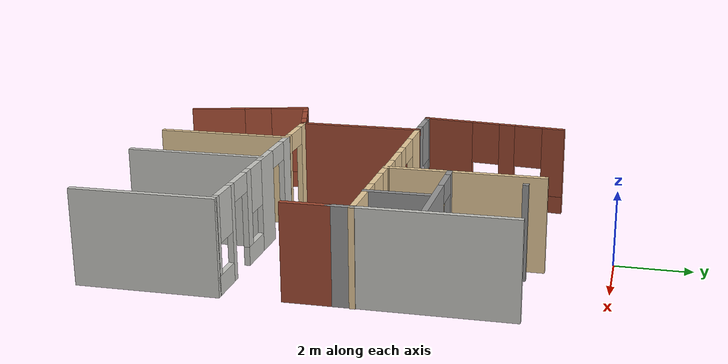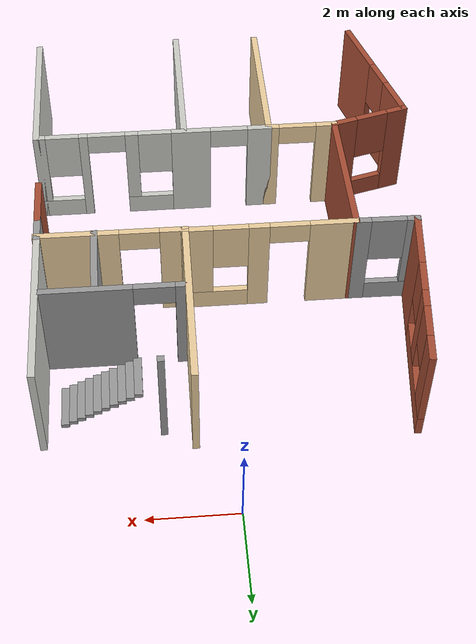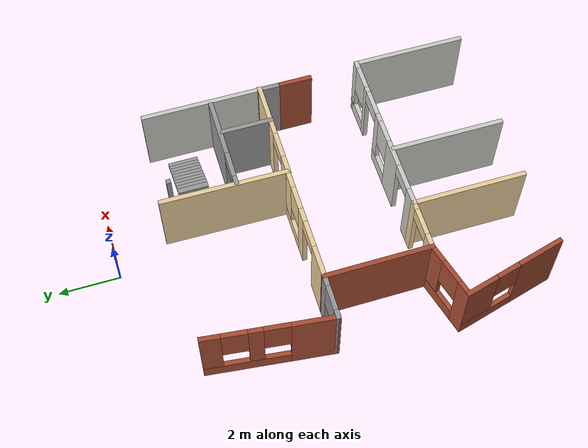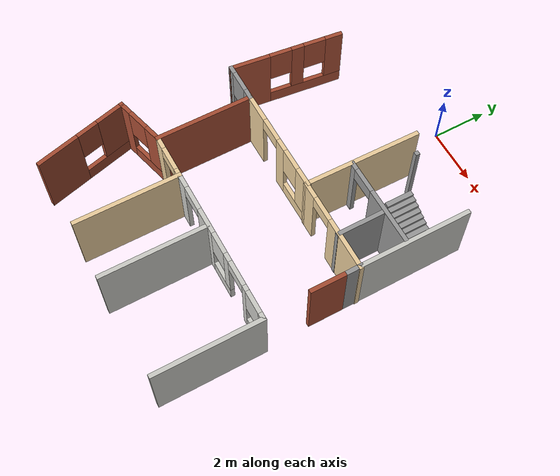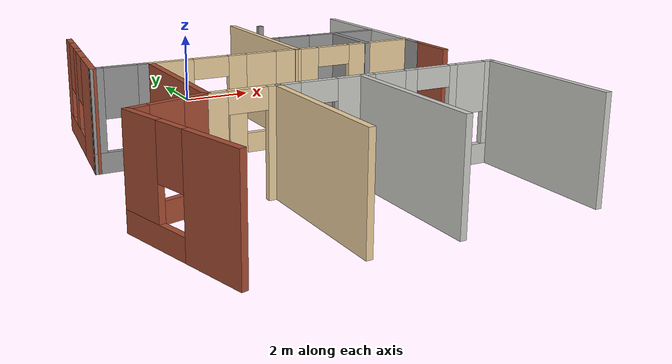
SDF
<sdf version="1.6">
 <model name="Building">
  <pose>4.29574 -7.32604 0 0 -0 0</pose>
  <link name="Stairs_2">
   <visual name="Stairs_2_Visual_0">
    <pose>-0.680228 4.38796 0.05 0 0 -1.5708</pose>
    <geometry><box><size>1 0.18 0.1</size></box></geometry>
    <material>
     <script><uri>file://media/materials/scripts/gazebo.material</uri><name>Gazebo/Grey</name></script>
     <ambient>1 1 1 1</ambient>
    </material>
    <meta><layer>0</layer></meta>
   </visual>
   <collision name="Stairs_2_Collision_0">
    <geometry><box><size>1 0.18 0.1</size></box></geometry>
    <pose>-0.680228 4.38796 0.05 0 0 -1.5708</pose>
   </collision>
   <visual name="Stairs_2_Visual_1">
    <pose>-0.860228 4.38796 0.15 0 0 -1.5708</pose>
    <geometry><box><size>1 0.18 0.1</size></box></geometry>
    <material>
     <script><uri>file://media/materials/scripts/gazebo.material</uri><name>Gazebo/Grey</name></script>
     <ambient>1 1 1 1</ambient>
    </material>
    <meta><layer>0</layer></meta>
   </visual>
   <collision name="Stairs_2_Collision_1">
    <geometry><box><size>1 0.18 0.1</size></box></geometry>
    <pose>-0.860228 4.38796 0.15 0 0 -1.5708</pose>
   </collision>
   <visual name="Stairs_2_Visual_2">
    <pose>-1.04023 4.38796 0.25 0 0 -1.5708</pose>
    <geometry><box><size>1 0.18 0.1</size></box></geometry>
    <material>
     <script><uri>file://media/materials/scripts/gazebo.material</uri><name>Gazebo/Grey</name></script>
     <ambient>1 1 1 1</ambient>
    </material>
    <meta><layer>0</layer></meta>
   </visual>
   <collision name="Stairs_2_Collision_2">
    <geometry><box><size>1 0.18 0.1</size></box></geometry>
    <pose>-1.04023 4.38796 0.25 0 0 -1.5708</pose>
   </collision>
   <visual name="Stairs_2_Visual_3">
    <pose>-1.22023 4.38796 0.35 0 0 -1.5708</pose>
    <geometry><box><size>1 0.18 0.1</size></box></geometry>
    <material>
     <script><uri>file://media/materials/scripts/gazebo.material</uri><name>Gazebo/Grey</name></script>
     <ambient>1 1 1 1</ambient>
    </material>
    <meta><layer>0</layer></meta>
   </visual>
   <collision name="Stairs_2_Collision_3">
    <geometry><box><size>1 0.18 0.1</size></box></geometry>
    <pose>-1.22023 4.38796 0.35 0 0 -1.5708</pose>
   </collision>
   <visual name="Stairs_2_Visual_4">
    <pose>-1.40023 4.38796 0.45 0 0 -1.5708</pose>
    <geometry><box><size>1 0.18 0.1</size></box></geometry>
    <material>
     <script><uri>file://media/materials/scripts/gazebo.material</uri><name>Gazebo/Grey</name></script>
     <ambient>1 1 1 1</ambient>
    </material>
    <meta><layer>0</layer></meta>
   </visual>
   <collision name="Stairs_2_Collision_4">
    <geometry><box><size>1 0.18 0.1</size></box></geometry>
    <pose>-1.40023 4.38796 0.45 0 0 -1.5708</pose>
   </collision>
   <visual name="Stairs_2_Visual_5">
    <pose>-1.58023 4.38796 0.55 0 0 -1.5708</pose>
    <geometry><box><size>1 0.18 0.1</size></box></geometry>
    <material>
     <script><uri>file://media/materials/scripts/gazebo.material</uri><name>Gazebo/Grey</name></script>
     <ambient>1 1 1 1</ambient>
    </material>
    <meta><layer>0</layer></meta>
   </visual>
   <collision name="Stairs_2_Collision_5">
    <geometry><box><size>1 0.18 0.1</size></box></geometry>
    <pose>-1.58023 4.38796 0.55 0 0 -1.5708</pose>
   </collision>
   <visual name="Stairs_2_Visual_6">
    <pose>-1.76023 4.38796 0.65 0 0 -1.5708</pose>
    <geometry><box><size>1 0.18 0.1</size></box></geometry>
    <material>
     <script><uri>file://media/materials/scripts/gazebo.material</uri><name>Gazebo/Grey</name></script>
     <ambient>1 1 1 1</ambient>
    </material>
    <meta><layer>0</layer></meta>
   </visual>
   <collision name="Stairs_2_Collision_6">
    <geometry><box><size>1 0.18 0.1</size></box></geometry>
    <pose>-1.76023 4.38796 0.65 0 0 -1.5708</pose>
   </collision>
   <visual name="Stairs_2_Visual_7">
    <pose>-1.94023 4.38796 0.75 0 0 -1.5708</pose>
    <geometry><box><size>1 0.18 0.1</size></box></geometry>
    <material>
     <script><uri>file://media/materials/scripts/gazebo.material</uri><name>Gazebo/Grey</name></script>
     <ambient>1 1 1 1</ambient>
    </material>
    <meta><layer>0</layer></meta>
   </visual>
   <collision name="Stairs_2_Collision_7">
    <geometry><box><size>1 0.18 0.1</size></box></geometry>
    <pose>-1.94023 4.38796 0.75 0 0 -1.5708</pose>
   </collision>
   <visual name="Stairs_2_Visual_8">
    <pose>-2.12023 4.38796 0.85 0 0 -1.5708</pose>
    <geometry><box><size>1 0.18 0.1</size></box></geometry>
    <material>
     <script><uri>file://media/materials/scripts/gazebo.material</uri><name>Gazebo/Grey</name></script>
     <ambient>1 1 1 1</ambient>
    </material>
    <meta><layer>0</layer></meta>
   </visual>
   <collision name="Stairs_2_Collision_8">
    <geometry><box><size>1 0.18 0.1</size></box></geometry>
    <pose>-2.12023 4.38796 0.85 0 0 -1.5708</pose>
   </collision>
   <visual name="Stairs_2_Visual_9">
    <pose>-2.30023 4.38796 0.95 0 0 -1.5708</pose>
    <geometry><box><size>1 0.18 0.1</size></box></geometry>
    <material>
     <script><uri>file://media/materials/scripts/gazebo.material</uri><name>Gazebo/Grey</name></script>
     <ambient>1 1 1 1</ambient>
    </material>
    <meta><layer>0</layer></meta>
   </visual>
   <collision name="Stairs_2_Collision_9">
    <geometry><box><size>1 0.18 0.1</size></box></geometry>
    <pose>-2.30023 4.38796 0.95 0 0 -1.5708</pose>
   </collision>
  </link>
  <link name="Wall_11">
   <pose>-6.52017 -1.84669 0 0 -0 0</pose>
   <visual name="Wall_11_Visual_0">
    <pose>-0.613993 0 1.25 0 -0 0</pose>
    <geometry><box><size>0.522013 0.15 2.5</size></box></geometry>
    <material>
     <script><uri>file://media/materials/scripts/gazebo.material</uri><name>Gazebo/Grey</name></script>
     <ambient>0.921569 0.807843 0.615686 1</ambient>
    </material>
    <meta><layer>0</layer></meta>
   </visual>
   <collision name="Wall_11_Collision_0">
    <geometry><box><size>0.522013 0.15 2.5</size></box></geometry>
    <pose>-0.613993 0 1.25 0 -0 0</pose>
   </collision>
   <visual name="Wall_11_Visual_1">
    <pose>0.711007 0 1.25 0 -0 0</pose>
    <geometry><box><size>0.327987 0.15 2.5</size></box></geometry>
    <material>
     <script><uri>file://media/materials/scripts/gazebo.material</uri><name>Gazebo/Grey</name></script>
     <ambient>0.921569 0.807843 0.615686 1</ambient>
    </material>
    <meta><layer>0</layer></meta>
   </visual>
   <collision name="Wall_11_Collision_1">
    <geometry><box><size>0.327987 0.15 2.5</size></box></geometry>
    <pose>0.711007 0 1.25 0 -0 0</pose>
   </collision>
   <visual name="Wall_11_Visual_2">
    <pose>0.097013 0 2.25 0 -0 0</pose>
    <geometry><box><size>0.9 0.15 0.5</size></box></geometry>
    <material>
     <script><uri>file://media/materials/scripts/gazebo.material</uri><name>Gazebo/Grey</name></script>
     <ambient>0.921569 0.807843 0.615686 1</ambient>
    </material>
    <meta><layer>0</layer></meta>
   </visual>
   <collision name="Wall_11_Collision_2">
    <geometry><box><size>0.9 0.15 0.5</size></box></geometry>
    <pose>0.097013 0 2.25 0 -0 0</pose>
   </collision>
  </link>
  <link name="Wall_12">
   <collision name="Wall_12_Collision">
    <geometry><box><size>3.75 0.15 2.5</size></box></geometry>
    <pose>0 0 1.25 0 -0 0</pose>
   </collision>
   <visual name="Wall_12_Visual">
    <pose>0 0 1.25 0 -0 0</pose>
    <geometry><box><size>3.75 0.15 2.5</size></box></geometry>
    <material>
     <script><uri>file://media/materials/scripts/gazebo.material</uri><name>Gazebo/Grey</name></script>
     <ambient>0.921569 0.807843 0.615686 1</ambient>
    </material>
    <meta><layer>0</layer></meta>
   </visual>
   <pose>-5.72017 -3.64669 0 0 0 -1.5708</pose>
  </link>
  <link name="Wall_14">
   <pose>-2.92017 -1.84669 0 0 -0 0</pose>
   <visual name="Wall_14_Visual_0">
    <pose>-2.58082 0 1.25 0 -0 0</pose>
    <geometry><box><size>0.588363 0.15 2.5</size></box></geometry>
    <material>
     <script><uri>file://media/materials/scripts/gazebo.material</uri><name>Gazebo/CeilingTiled</name></script>
     <ambient>0.921569 0.807843 0.615686 1</ambient>
    </material>
    <meta><layer>0</layer></meta>
   </visual>
   <collision name="Wall_14_Collision_0">
    <geometry><box><size>0.588363 0.15 2.5</size></box></geometry>
    <pose>-2.58082 0 1.25 0 -0 0</pose>
   </collision>
   <visual name="Wall_14_Visual_1">
    <pose>-0.912337 0 1.25 0 -0 0</pose>
    <geometry><box><size>0.9486 0.15 2.5</size></box></geometry>
    <material>
     <script><uri>file://media/materials/scripts/gazebo.material</uri><name>Gazebo/CeilingTiled</name></script>
     <ambient>0.921569 0.807843 0.615686 1</ambient>
    </material>
    <meta><layer>0</layer></meta>
   </visual>
   <collision name="Wall_14_Collision_1">
    <geometry><box><size>0.9486 0.15 2.5</size></box></geometry>
    <pose>-0.912337 0 1.25 0 -0 0</pose>
   </collision>
   <visual name="Wall_14_Visual_2">
    <pose>1.67976 0 1.25 0 -0 0</pose>
    <geometry><box><size>0.208 0.15 2.5</size></box></geometry>
    <material>
     <script><uri>file://media/materials/scripts/gazebo.material</uri><name>Gazebo/CeilingTiled</name></script>
     <ambient>0.921569 0.807843 0.615686 1</ambient>
    </material>
    <meta><layer>0</layer></meta>
   </visual>
   <collision name="Wall_14_Collision_2">
    <geometry><box><size>0.208 0.15 2.5</size></box></geometry>
    <pose>1.67976 0 1.25 0 -0 0</pose>
   </collision>
   <visual name="Wall_14_Visual_3">
    <pose>0.118863 0 0.25 0 -0 0</pose>
    <geometry><box><size>1.1138 0.15 0.5</size></box></geometry>
    <material>
     <script><uri>file://media/materials/scripts/gazebo.material</uri><name>Gazebo/CeilingTiled</name></script>
     <ambient>0.921569 0.807843 0.615686 1</ambient>
    </material>
    <meta><layer>0</layer></meta>
   </visual>
   <collision name="Wall_14_Collision_3">
    <geometry><box><size>1.1138 0.15 0.5</size></box></geometry>
    <pose>0.118863 0 0.25 0 -0 0</pose>
   </collision>
   <visual name="Wall_14_Visual_4">
    <pose>2.32938 0 0.25 0 -0 0</pose>
    <geometry><box><size>1.09124 0.15 0.5</size></box></geometry>
    <material>
     <script><uri>file://media/materials/scripts/gazebo.material</uri><name>Gazebo/CeilingTiled</name></script>
     <ambient>0.921569 0.807843 0.615686 1</ambient>
    </material>
    <meta><layer>0</layer></meta>
   </visual>
   <collision name="Wall_14_Collision_4">
    <geometry><box><size>1.09124 0.15 0.5</size></box></geometry>
    <pose>2.32938 0 0.25 0 -0 0</pose>
   </collision>
   <visual name="Wall_14_Visual_5">
    <pose>0.518863 0 1.5 0 -0 0</pose>
    <geometry><box><size>0.3138 0.15 2</size></box></geometry>
    <material>
     <script><uri>file://media/materials/scripts/gazebo.material</uri><name>Gazebo/CeilingTiled</name></script>
     <ambient>0.921569 0.807843 0.615686 1</ambient>
    </material>
    <meta><layer>0</layer></meta>
   </visual>
   <collision name="Wall_14_Collision_5">
    <geometry><box><size>0.3138 0.15 2</size></box></geometry>
    <pose>0.518863 0 1.5 0 -0 0</pose>
   </collision>
   <visual name="Wall_14_Visual_6">
    <pose>0.518863 0 1.5 0 -0 0</pose>
    <geometry><box><size>0.3138 0.15 2</size></box></geometry>
    <material>
     <script><uri>file://media/materials/scripts/gazebo.material</uri><name>Gazebo/CeilingTiled</name></script>
     <ambient>0.921569 0.807843 0.615686 1</ambient>
    </material>
    <meta><layer>0</layer></meta>
   </visual>
   <collision name="Wall_14_Collision_6">
    <geometry><box><size>0.3138 0.15 2</size></box></geometry>
    <pose>0.518863 0 1.5 0 -0 0</pose>
   </collision>
   <visual name="Wall_14_Visual_7">
    <pose>2.72938 0 1.5 0 -0 0</pose>
    <geometry><box><size>0.291237 0.15 2</size></box></geometry>
    <material>
     <script><uri>file://media/materials/scripts/gazebo.material</uri><name>Gazebo/CeilingTiled</name></script>
     <ambient>0.921569 0.807843 0.615686 1</ambient>
    </material>
    <meta><layer>0</layer></meta>
   </visual>
   <collision name="Wall_14_Collision_7">
    <geometry><box><size>0.291237 0.15 2</size></box></geometry>
    <pose>2.72938 0 1.5 0 -0 0</pose>
   </collision>
   <visual name="Wall_14_Visual_8">
    <pose>-0.038037 0 1.9 0 -0 0</pose>
    <geometry><box><size>0.8 0.15 1.2</size></box></geometry>
    <material>
     <script><uri>file://media/materials/scripts/gazebo.material</uri><name>Gazebo/CeilingTiled</name></script>
     <ambient>0.921569 0.807843 0.615686 1</ambient>
    </material>
    <meta><layer>0</layer></meta>
   </visual>
   <collision name="Wall_14_Collision_8">
    <geometry><box><size>0.8 0.15 1.2</size></box></geometry>
    <pose>-0.038037 0 1.9 0 -0 0</pose>
   </collision>
   <visual name="Wall_14_Visual_9">
    <pose>2.18376 0 1.9 0 -0 0</pose>
    <geometry><box><size>0.8 0.15 1.2</size></box></geometry>
    <material>
     <script><uri>file://media/materials/scripts/gazebo.material</uri><name>Gazebo/CeilingTiled</name></script>
     <ambient>0.921569 0.807843 0.615686 1</ambient>
    </material>
    <meta><layer>0</layer></meta>
   </visual>
   <collision name="Wall_14_Collision_9">
    <geometry><box><size>0.8 0.15 1.2</size></box></geometry>
    <pose>2.18376 0 1.9 0 -0 0</pose>
   </collision>
   <visual name="Wall_14_Visual_10">
    <pose>-1.83664 0 2.25 0 -0 0</pose>
    <geometry><box><size>0.9 0.15 0.5</size></box></geometry>
    <material>
     <script><uri>file://media/materials/scripts/gazebo.material</uri><name>Gazebo/CeilingTiled</name></script>
     <ambient>0.921569 0.807843 0.615686 1</ambient>
    </material>
    <meta><layer>0</layer></meta>
   </visual>
   <collision name="Wall_14_Collision_10">
    <geometry><box><size>0.9 0.15 0.5</size></box></geometry>
    <pose>-1.83664 0 2.25 0 -0 0</pose>
   </collision>
   <visual name="Wall_14_Visual_11">
    <pose>1.12576 0 2.25 0 -0 0</pose>
    <geometry><box><size>0.9 0.15 0.5</size></box></geometry>
    <material>
     <script><uri>file://media/materials/scripts/gazebo.material</uri><name>Gazebo/CeilingTiled</name></script>
     <ambient>0.921569 0.807843 0.615686 1</ambient>
    </material>
    <meta><layer>0</layer></meta>
   </visual>
   <collision name="Wall_14_Collision_11">
    <geometry><box><size>0.9 0.15 0.5</size></box></geometry>
    <pose>1.12576 0 2.25 0 -0 0</pose>
   </collision>
   <visual name="Wall_14_Visual_12">
    <pose>1.12576 0 2.25 0 -0 0</pose>
    <geometry><box><size>0.9 0.15 0.5</size></box></geometry>
    <material>
     <script><uri>file://media/materials/scripts/gazebo.material</uri><name>Gazebo/CeilingTiled</name></script>
     <ambient>0.921569 0.807843 0.615686 1</ambient>
    </material>
    <meta><layer>0</layer></meta>
   </visual>
   <collision name="Wall_14_Collision_12">
    <geometry><box><size>0.9 0.15 0.5</size></box></geometry>
    <pose>1.12576 0 2.25 0 -0 0</pose>
   </collision>
  </link>
  <link name="Wall_15">
   <collision name="Wall_15_Collision">
    <geometry><box><size>3.75 0.15 2.5</size></box></geometry>
    <pose>0 0 1.25 0 -0 0</pose>
   </collision>
   <visual name="Wall_15_Visual">
    <pose>0 0 1.25 0 -0 0</pose>
    <geometry><box><size>3.75 0.15 2.5</size></box></geometry>
    <material>
     <script><uri>file://media/materials/scripts/gazebo.material</uri><name>Gazebo/CeilingTiled</name></script>
     <ambient>0.921569 0.807843 0.615686 1</ambient>
    </material>
    <meta><layer>0</layer></meta>
   </visual>
   <pose>-0.120167 -3.64669 0 0 0 -1.5708</pose>
  </link>
  <link name="Wall_19">
   <collision name="Wall_19_Collision">
    <geometry><box><size>3.75 0.15 2.5</size></box></geometry>
    <pose>0 0 1.25 0 -0 0</pose>
   </collision>
   <visual name="Wall_19_Visual">
    <pose>0 0 1.25 0 -0 0</pose>
    <geometry><box><size>3.75 0.15 2.5</size></box></geometry>
    <material>
     <script><uri>file://media/materials/scripts/gazebo.material</uri><name>Gazebo/CeilingTiled</name></script>
     <ambient>0.921569 0.807843 0.615686 1</ambient>
    </material>
    <meta><layer>0</layer></meta>
   </visual>
   <pose>-3.66538 -3.70743 0 0 0 -1.5708</pose>
  </link>
  <link name="Wall_23">
   <pose>-5.40433 1.5402 0 0 -0 0</pose>
   <visual name="Wall_23_Visual_0">
    <pose>-1.44346 0 1.25 0 -0 0</pose>
    <geometry><box><size>1.11308 0.15 2.5</size></box></geometry>
    <material>
     <script><uri>file://media/materials/scripts/gazebo.material</uri><name>Gazebo/Grey</name></script>
     <ambient>0.921569 0.807843 0.615686 1</ambient>
    </material>
    <meta><layer>0</layer></meta>
   </visual>
   <collision name="Wall_23_Collision_0">
    <geometry><box><size>1.11308 0.15 2.5</size></box></geometry>
    <pose>-1.44346 0 1.25 0 -0 0</pose>
   </collision>
   <visual name="Wall_23_Visual_1">
    <pose>0.249326 0 1.25 0 -0 0</pose>
    <geometry><box><size>0.4725 0.15 2.5</size></box></geometry>
    <material>
     <script><uri>file://media/materials/scripts/gazebo.material</uri><name>Gazebo/Grey</name></script>
     <ambient>0.921569 0.807843 0.615686 1</ambient>
    </material>
    <meta><layer>0</layer></meta>
   </visual>
   <collision name="Wall_23_Collision_1">
    <geometry><box><size>0.4725 0.15 2.5</size></box></geometry>
    <pose>0.249326 0 1.25 0 -0 0</pose>
   </collision>
   <visual name="Wall_23_Visual_2">
    <pose>1.24279 0 0.25 0 -0 0</pose>
    <geometry><box><size>1.51442 0.15 0.5</size></box></geometry>
    <material>
     <script><uri>file://media/materials/scripts/gazebo.material</uri><name>Gazebo/Grey</name></script>
     <ambient>0.921569 0.807843 0.615686 1</ambient>
    </material>
    <meta><layer>0</layer></meta>
   </visual>
   <collision name="Wall_23_Collision_2">
    <geometry><box><size>1.51442 0.15 0.5</size></box></geometry>
    <pose>1.24279 0 0.25 0 -0 0</pose>
   </collision>
   <visual name="Wall_23_Visual_3">
    <pose>1.64279 0 1.5 0 -0 0</pose>
    <geometry><box><size>0.714424 0.15 2</size></box></geometry>
    <material>
     <script><uri>file://media/materials/scripts/gazebo.material</uri><name>Gazebo/Grey</name></script>
     <ambient>0.921569 0.807843 0.615686 1</ambient>
    </material>
    <meta><layer>0</layer></meta>
   </visual>
   <collision name="Wall_23_Collision_3">
    <geometry><box><size>0.714424 0.15 2</size></box></geometry>
    <pose>1.64279 0 1.5 0 -0 0</pose>
   </collision>
   <visual name="Wall_23_Visual_4">
    <pose>0.885576 0 1.9 0 -0 0</pose>
    <geometry><box><size>0.8 0.15 1.2</size></box></geometry>
    <material>
     <script><uri>file://media/materials/scripts/gazebo.material</uri><name>Gazebo/Grey</name></script>
     <ambient>0.921569 0.807843 0.615686 1</ambient>
    </material>
    <meta><layer>0</layer></meta>
   </visual>
   <collision name="Wall_23_Collision_4">
    <geometry><box><size>0.8 0.15 1.2</size></box></geometry>
    <pose>0.885576 0 1.9 0 -0 0</pose>
   </collision>
   <visual name="Wall_23_Visual_5">
    <pose>-0.436924 0 2.25 0 -0 0</pose>
    <geometry><box><size>0.9 0.15 0.5</size></box></geometry>
    <material>
     <script><uri>file://media/materials/scripts/gazebo.material</uri><name>Gazebo/Grey</name></script>
     <ambient>0.921569 0.807843 0.615686 1</ambient>
    </material>
    <meta><layer>0</layer></meta>
   </visual>
   <collision name="Wall_23_Collision_5">
    <geometry><box><size>0.9 0.15 0.5</size></box></geometry>
    <pose>-0.436924 0 2.25 0 -0 0</pose>
   </collision>
  </link>
  <link name="Wall_27">
   <collision name="Wall_27_Collision">
    <geometry><box><size>0.15 0.15 2.5</size></box></geometry>
    <pose>0 0 1.25 0 -0 0</pose>
   </collision>
   <visual name="Wall_27_Visual">
    <pose>0 0 1.25 0 -0 0</pose>
    <geometry><box><size>0.15 0.15 2.5</size></box></geometry>
    <material>
     <script><uri>file://media/materials/scripts/gazebo.material</uri><name>Gazebo/Grey</name></script>
     <ambient>1 1 1 1</ambient>
    </material>
    <meta><layer>0</layer></meta>
   </visual>
   <pose>-2.80058 5.17081 0 0 -0 0</pose>
  </link>
  <link name="Wall_33">
   <collision name="Wall_33_Collision">
    <geometry><box><size>4.20944 0.15 2.5</size></box></geometry>
    <pose>0 0 1.25 0 -0 0</pose>
   </collision>
   <visual name="Wall_33_Visual">
    <pose>0 0 1.25 0 -0 0</pose>
    <geometry><box><size>4.20944 0.15 2.5</size></box></geometry>
    <material>
     <script><uri>file://media/materials/scripts/gazebo.material</uri><name>Gazebo/Grey</name></script>
     <ambient>0.921569 0.807843 0.615686 1</ambient>
    </material>
    <meta><layer>0</layer></meta>
   </visual>
   <pose>-3.48131 3.54332 0 0 -0 1.55874</pose>
  </link>
  <link name="Wall_35">
   <pose>-1.85267 1.50582 0 0 0 -0.0048</pose>
   <visual name="Wall_35_Visual_0">
    <pose>-1.40365 0 1.25 0 -0 0</pose>
    <geometry><box><size>0.648961 0.15 2.5</size></box></geometry>
    <material>
     <script><uri>file://media/materials/scripts/gazebo.material</uri><name>Gazebo/Grey</name></script>
     <ambient>0.921569 0.807843 0.615686 1</ambient>
    </material>
    <meta><layer>0</layer></meta>
   </visual>
   <collision name="Wall_35_Collision_0">
    <geometry><box><size>0.648961 0.15 2.5</size></box></geometry>
    <pose>-1.40365 0 1.25 0 -0 0</pose>
   </collision>
   <visual name="Wall_35_Visual_1">
    <pose>0.77448 0 1.25 0 -0 0</pose>
    <geometry><box><size>1.90729 0.15 2.5</size></box></geometry>
    <material>
     <script><uri>file://media/materials/scripts/gazebo.material</uri><name>Gazebo/Grey</name></script>
     <ambient>0.921569 0.807843 0.615686 1</ambient>
    </material>
    <meta><layer>0</layer></meta>
   </visual>
   <collision name="Wall_35_Collision_1">
    <geometry><box><size>1.90729 0.15 2.5</size></box></geometry>
    <pose>0.77448 0 1.25 0 -0 0</pose>
   </collision>
   <visual name="Wall_35_Visual_2">
    <pose>-0.629166 0 2.25 0 -0 0</pose>
    <geometry><box><size>0.9 0.15 0.5</size></box></geometry>
    <material>
     <script><uri>file://media/materials/scripts/gazebo.material</uri><name>Gazebo/Grey</name></script>
     <ambient>0.921569 0.807843 0.615686 1</ambient>
    </material>
    <meta><layer>0</layer></meta>
   </visual>
   <collision name="Wall_35_Collision_2">
    <geometry><box><size>0.9 0.15 0.5</size></box></geometry>
    <pose>-0.629166 0 2.25 0 -0 0</pose>
   </collision>
  </link>
  <link name="Wall_39">
   <collision name="Wall_39_Collision">
    <geometry><box><size>4 0.15 2.5</size></box></geometry>
    <pose>0 0 1.25 0 -0 0</pose>
   </collision>
   <visual name="Wall_39_Visual">
    <pose>0 0 1.25 0 -0 0</pose>
    <geometry><box><size>4 0.15 2.5</size></box></geometry>
    <material>
     <script><uri>file://media/materials/scripts/gazebo.material</uri><name>Gazebo/CeilingTiled</name></script>
     <ambient>1 1 1 1</ambient>
    </material>
    <meta><layer>0</layer></meta>
   </visual>
   <pose>-0.226014 3.44933 0 0 -0 1.5708</pose>
  </link>
  <link name="Wall_4">
   <pose>-8.67361 -3.94343 0 0 -0 1.8326</pose>
   <visual name="Wall_4_Visual_0">
    <pose>-0.961066 0 1.25 0 -0 0</pose>
    <geometry><box><size>1.57787 0.15 2.5</size></box></geometry>
    <material>
     <script><uri>file://media/materials/scripts/gazebo.material</uri><name>Gazebo/Bricks</name></script>
     <ambient>1 1 1 1</ambient>
    </material>
    <meta><layer>0</layer></meta>
   </visual>
   <collision name="Wall_4_Collision_0">
    <geometry><box><size>1.57787 0.15 2.5</size></box></geometry>
    <pose>-0.961066 0 1.25 0 -0 0</pose>
   </collision>
   <visual name="Wall_4_Visual_1">
    <pose>0.788934 0 0.25 0 -0 0</pose>
    <geometry><box><size>1.92213 0.15 0.5</size></box></geometry>
    <material>
     <script><uri>file://media/materials/scripts/gazebo.material</uri><name>Gazebo/Bricks</name></script>
     <ambient>1 1 1 1</ambient>
    </material>
    <meta><layer>0</layer></meta>
   </visual>
   <collision name="Wall_4_Collision_1">
    <geometry><box><size>1.92213 0.15 0.5</size></box></geometry>
    <pose>0.788934 0 0.25 0 -0 0</pose>
   </collision>
   <visual name="Wall_4_Visual_2">
    <pose>1.18893 0 1.5 0 -0 0</pose>
    <geometry><box><size>1.12213 0.15 2</size></box></geometry>
    <material>
     <script><uri>file://media/materials/scripts/gazebo.material</uri><name>Gazebo/Bricks</name></script>
     <ambient>1 1 1 1</ambient>
    </material>
    <meta><layer>0</layer></meta>
   </visual>
   <collision name="Wall_4_Collision_2">
    <geometry><box><size>1.12213 0.15 2</size></box></geometry>
    <pose>1.18893 0 1.5 0 -0 0</pose>
   </collision>
   <visual name="Wall_4_Visual_3">
    <pose>0.227868 0 1.9 0 -0 0</pose>
    <geometry><box><size>0.8 0.15 1.2</size></box></geometry>
    <material>
     <script><uri>file://media/materials/scripts/gazebo.material</uri><name>Gazebo/Bricks</name></script>
     <ambient>1 1 1 1</ambient>
    </material>
    <meta><layer>0</layer></meta>
   </visual>
   <collision name="Wall_4_Collision_3">
    <geometry><box><size>0.8 0.15 1.2</size></box></geometry>
    <pose>0.227868 0 1.9 0 -0 0</pose>
   </collision>
  </link>
  <link name="Wall_43">
   <pose>-1.90246 3.17229 0 0 -0 0</pose>
   <visual name="Wall_43_Visual_0">
    <pose>-1.45957 0 1.25 0 -0 0</pose>
    <geometry><box><size>0.330852 0.15 2.5</size></box></geometry>
    <material>
     <script><uri>file://media/materials/scripts/gazebo.material</uri><name>Gazebo/Grey</name></script>
     <ambient>1 1 1 1</ambient>
    </material>
    <meta><layer>0</layer></meta>
   </visual>
   <collision name="Wall_43_Collision_0">
    <geometry><box><size>0.330852 0.15 2.5</size></box></geometry>
    <pose>-1.45957 0 1.25 0 -0 0</pose>
   </collision>
   <visual name="Wall_43_Visual_1">
    <pose>0.615426 0 1.25 0 -0 0</pose>
    <geometry><box><size>2.01915 0.15 2.5</size></box></geometry>
    <material>
     <script><uri>file://media/materials/scripts/gazebo.material</uri><name>Gazebo/Grey</name></script>
     <ambient>1 1 1 1</ambient>
    </material>
    <meta><layer>0</layer></meta>
   </visual>
   <collision name="Wall_43_Collision_1">
    <geometry><box><size>2.01915 0.15 2.5</size></box></geometry>
    <pose>0.615426 0 1.25 0 -0 0</pose>
   </collision>
   <visual name="Wall_43_Visual_2">
    <pose>-0.844148 0 2.25 0 -0 0</pose>
    <geometry><box><size>0.9 0.15 0.5</size></box></geometry>
    <material>
     <script><uri>file://media/materials/scripts/gazebo.material</uri><name>Gazebo/Grey</name></script>
     <ambient>1 1 1 1</ambient>
    </material>
    <meta><layer>0</layer></meta>
   </visual>
   <collision name="Wall_43_Collision_2">
    <geometry><box><size>0.9 0.15 0.5</size></box></geometry>
    <pose>-0.844148 0 2.25 0 -0 0</pose>
   </collision>
  </link>
  <link name="Wall_45">
   <collision name="Wall_45_Collision">
    <geometry><box><size>1.75 0.15 2.5</size></box></geometry>
    <pose>0 0 1.25 0 -0 0</pose>
   </collision>
   <visual name="Wall_45_Visual">
    <pose>0 0 1.25 0 -0 0</pose>
    <geometry><box><size>1.75 0.15 2.5</size></box></geometry>
    <material>
     <script><uri>file://media/materials/scripts/gazebo.material</uri><name>Gazebo/Grey</name></script>
     <ambient>1 1 1 1</ambient>
    </material>
    <meta><layer>0</layer></meta>
   </visual>
   <pose>-1.48458 2.28897 0 0 0 -1.5708</pose>
  </link>
  <link name="Wall_47">
   <collision name="Wall_47_Collision">
    <geometry><box><size>0.75 0.15 2.5</size></box></geometry>
    <pose>0 0 1.25 0 -0 0</pose>
   </collision>
   <visual name="Wall_47_Visual">
    <pose>0 0 1.25 0 -0 0</pose>
    <geometry><box><size>0.75 0.15 2.5</size></box></geometry>
    <material>
     <script><uri>file://media/materials/scripts/gazebo.material</uri><name>Gazebo/Grey</name></script>
     <ambient>1 1 1 1</ambient>
    </material>
    <meta><layer>0</layer></meta>
   </visual>
   <pose>-0.226014 1.22433 0 0 0 -1.5708</pose>
  </link>
  <link name="Wall_5">
   <pose>-8.21365 -2.08609 0 0 -0 0.261799</pose>
   <visual name="Wall_5_Visual_0">
    <pose>-0.733309 0 1.25 0 -0 0</pose>
    <geometry><box><size>0.533382 0.15 2.5</size></box></geometry>
    <material>
     <script><uri>file://media/materials/scripts/gazebo.material</uri><name>Gazebo/Bricks</name></script>
     <ambient>1 1 1 1</ambient>
    </material>
    <meta><layer>0</layer></meta>
   </visual>
   <collision name="Wall_5_Collision_0">
    <geometry><box><size>0.533382 0.15 2.5</size></box></geometry>
    <pose>-0.733309 0 1.25 0 -0 0</pose>
   </collision>
   <visual name="Wall_5_Visual_1">
    <pose>0.266691 0 0.25 0 -0 0</pose>
    <geometry><box><size>1.46662 0.15 0.5</size></box></geometry>
    <material>
     <script><uri>file://media/materials/scripts/gazebo.material</uri><name>Gazebo/Bricks</name></script>
     <ambient>1 1 1 1</ambient>
    </material>
    <meta><layer>0</layer></meta>
   </visual>
   <collision name="Wall_5_Collision_1">
    <geometry><box><size>1.46662 0.15 0.5</size></box></geometry>
    <pose>0.266691 0 0.25 0 -0 0</pose>
   </collision>
   <visual name="Wall_5_Visual_2">
    <pose>0.666691 0 1.5 0 -0 0</pose>
    <geometry><box><size>0.666618 0.15 2</size></box></geometry>
    <material>
     <script><uri>file://media/materials/scripts/gazebo.material</uri><name>Gazebo/Bricks</name></script>
     <ambient>1 1 1 1</ambient>
    </material>
    <meta><layer>0</layer></meta>
   </visual>
   <collision name="Wall_5_Collision_2">
    <geometry><box><size>0.666618 0.15 2</size></box></geometry>
    <pose>0.666691 0 1.5 0 -0 0</pose>
   </collision>
   <visual name="Wall_5_Visual_3">
    <pose>-0.066618 0 1.9 0 -0 0</pose>
    <geometry><box><size>0.8 0.15 1.2</size></box></geometry>
    <material>
     <script><uri>file://media/materials/scripts/gazebo.material</uri><name>Gazebo/Bricks</name></script>
     <ambient>1 1 1 1</ambient>
    </material>
    <meta><layer>0</layer></meta>
   </visual>
   <collision name="Wall_5_Collision_3">
    <geometry><box><size>0.8 0.15 1.2</size></box></geometry>
    <pose>-0.066618 0 1.9 0 -0 0</pose>
   </collision>
  </link>
  <link name="Wall_6">
   <collision name="Wall_6_Collision">
    <geometry><box><size>3.5369 0.15 2.5</size></box></geometry>
    <pose>0 0 1.25 0 -0 0</pose>
   </collision>
   <visual name="Wall_6_Visual">
    <pose>0 0 1.25 0 -0 0</pose>
    <geometry><box><size>3.5369 0.15 2.5</size></box></geometry>
    <material>
     <script><uri>file://media/materials/scripts/gazebo.material</uri><name>Gazebo/Bricks</name></script>
     <ambient>1 1 1 1</ambient>
    </material>
    <meta><layer>0</layer></meta>
   </visual>
   <pose>-7.32475 -0.153243 0 0 -0 1.5735</pose>
  </link>
  <link name="Wall_65">
   <collision name="Wall_65_Collision">
    <geometry><box><size>1.25 0.15 2.5</size></box></geometry>
    <pose>0 0 1.25 0 -0 0</pose>
   </collision>
   <visual name="Wall_65_Visual">
    <pose>0 0 1.25 0 -0 0</pose>
    <geometry><box><size>1.25 0.15 2.5</size></box></geometry>
    <material>
     <script><uri>file://media/materials/scripts/gazebo.material</uri><name>Gazebo/Bricks</name></script>
     <ambient>1 1 1 1</ambient>
    </material>
    <meta><layer>0</layer></meta>
   </visual>
   <pose>-0.226014 0.374331 0 0 0 -1.5708</pose>
  </link>
  <link name="Wall_7">
   <pose>-8.01757 1.54676 0 0 -0 3.13207</pose>
   <visual name="Wall_7_Visual_0">
    <pose>-0.554694 0 1.25 0 -0 0</pose>
    <geometry><box><size>0.417153 0.15 2.5</size></box></geometry>
    <material>
     <script><uri>file://media/materials/scripts/gazebo.material</uri><name>Gazebo/Grey</name></script>
     <ambient>1 1 1 1</ambient>
    </material>
    <meta><layer>0</layer></meta>
   </visual>
   <collision name="Wall_7_Collision_0">
    <geometry><box><size>0.417153 0.15 2.5</size></box></geometry>
    <pose>-0.554694 0 1.25 0 -0 0</pose>
   </collision>
   <visual name="Wall_7_Visual_1">
    <pose>0.208577 0 0.25 0 -0 0</pose>
    <geometry><box><size>1.10939 0.15 0.5</size></box></geometry>
    <material>
     <script><uri>file://media/materials/scripts/gazebo.material</uri><name>Gazebo/Grey</name></script>
     <ambient>1 1 1 1</ambient>
    </material>
    <meta><layer>0</layer></meta>
   </visual>
   <collision name="Wall_7_Collision_1">
    <geometry><box><size>1.10939 0.15 0.5</size></box></geometry>
    <pose>0.208577 0 0.25 0 -0 0</pose>
   </collision>
   <visual name="Wall_7_Visual_2">
    <pose>0.608577 0 1.5 0 -0 0</pose>
    <geometry><box><size>0.309387 0.15 2</size></box></geometry>
    <material>
     <script><uri>file://media/materials/scripts/gazebo.material</uri><name>Gazebo/Grey</name></script>
     <ambient>1 1 1 1</ambient>
    </material>
    <meta><layer>0</layer></meta>
   </visual>
   <collision name="Wall_7_Collision_2">
    <geometry><box><size>0.309387 0.15 2</size></box></geometry>
    <pose>0.608577 0 1.5 0 -0 0</pose>
   </collision>
   <visual name="Wall_7_Visual_3">
    <pose>0.053883 0 1.9 0 -0 0</pose>
    <geometry><box><size>0.8 0.15 1.2</size></box></geometry>
    <material>
     <script><uri>file://media/materials/scripts/gazebo.material</uri><name>Gazebo/Grey</name></script>
     <ambient>1 1 1 1</ambient>
    </material>
    <meta><layer>0</layer></meta>
   </visual>
   <collision name="Wall_7_Collision_3">
    <geometry><box><size>0.8 0.15 1.2</size></box></geometry>
    <pose>0.053883 0 1.9 0 -0 0</pose>
   </collision>
  </link>
  <link name="Wall_8">
   <pose>-8.47295 3.54598 0 0 -0 1.45446</pose>
   <visual name="Wall_8_Visual_0">
    <pose>-1.34799 0 1.25 0 -0 0</pose>
    <geometry><box><size>1.46647 0.15 2.5</size></box></geometry>
    <material>
     <script><uri>file://media/materials/scripts/gazebo.material</uri><name>Gazebo/Bricks</name></script>
     <ambient>1 1 1 1</ambient>
    </material>
    <meta><layer>0</layer></meta>
   </visual>
   <collision name="Wall_8_Collision_0">
    <geometry><box><size>1.46647 0.15 2.5</size></box></geometry>
    <pose>-1.34799 0 1.25 0 -0 0</pose>
   </collision>
   <visual name="Wall_8_Visual_1">
    <pose>0.733235 0 0.25 0 -0 0</pose>
    <geometry><box><size>2.69598 0.15 0.5</size></box></geometry>
    <material>
     <script><uri>file://media/materials/scripts/gazebo.material</uri><name>Gazebo/Bricks</name></script>
     <ambient>1 1 1 1</ambient>
    </material>
    <meta><layer>0</layer></meta>
   </visual>
   <collision name="Wall_8_Collision_1">
    <geometry><box><size>2.69598 0.15 0.5</size></box></geometry>
    <pose>0.733235 0 0.25 0 -0 0</pose>
   </collision>
   <visual name="Wall_8_Visual_2">
    <pose>0.413888 0 1.5 0 -0 0</pose>
    <geometry><box><size>0.457289 0.15 2</size></box></geometry>
    <material>
     <script><uri>file://media/materials/scripts/gazebo.material</uri><name>Gazebo/Bricks</name></script>
     <ambient>1 1 1 1</ambient>
    </material>
    <meta><layer>0</layer></meta>
   </visual>
   <collision name="Wall_8_Collision_2">
    <geometry><box><size>0.457289 0.15 2</size></box></geometry>
    <pose>0.413888 0 1.5 0 -0 0</pose>
   </collision>
   <visual name="Wall_8_Visual_3">
    <pose>1.76188 0 1.5 0 -0 0</pose>
    <geometry><box><size>0.638694 0.15 2</size></box></geometry>
    <material>
     <script><uri>file://media/materials/scripts/gazebo.material</uri><name>Gazebo/Bricks</name></script>
     <ambient>1 1 1 1</ambient>
    </material>
    <meta><layer>0</layer></meta>
   </visual>
   <collision name="Wall_8_Collision_3">
    <geometry><box><size>0.638694 0.15 2</size></box></geometry>
    <pose>1.76188 0 1.5 0 -0 0</pose>
   </collision>
   <visual name="Wall_8_Visual_4">
    <pose>-0.214757 0 1.9 0 -0 0</pose>
    <geometry><box><size>0.8 0.15 1.2</size></box></geometry>
    <material>
     <script><uri>file://media/materials/scripts/gazebo.material</uri><name>Gazebo/Bricks</name></script>
     <ambient>1 1 1 1</ambient>
    </material>
    <meta><layer>0</layer></meta>
   </visual>
   <collision name="Wall_8_Collision_4">
    <geometry><box><size>0.8 0.15 1.2</size></box></geometry>
    <pose>-0.214757 0 1.9 0 -0 0</pose>
   </collision>
   <visual name="Wall_8_Visual_5">
    <pose>1.04253 0 1.9 0 -0 0</pose>
    <geometry><box><size>0.8 0.15 1.2</size></box></geometry>
    <material>
     <script><uri>file://media/materials/scripts/gazebo.material</uri><name>Gazebo/Bricks</name></script>
     <ambient>1 1 1 1</ambient>
    </material>
    <meta><layer>0</layer></meta>
   </visual>
   <collision name="Wall_8_Collision_5">
    <geometry><box><size>0.8 0.15 1.2</size></box></geometry>
    <pose>1.04253 0 1.9 0 -0 0</pose>
   </collision>
  </link>
  <static>1</static>
 </model>
</sdf>
